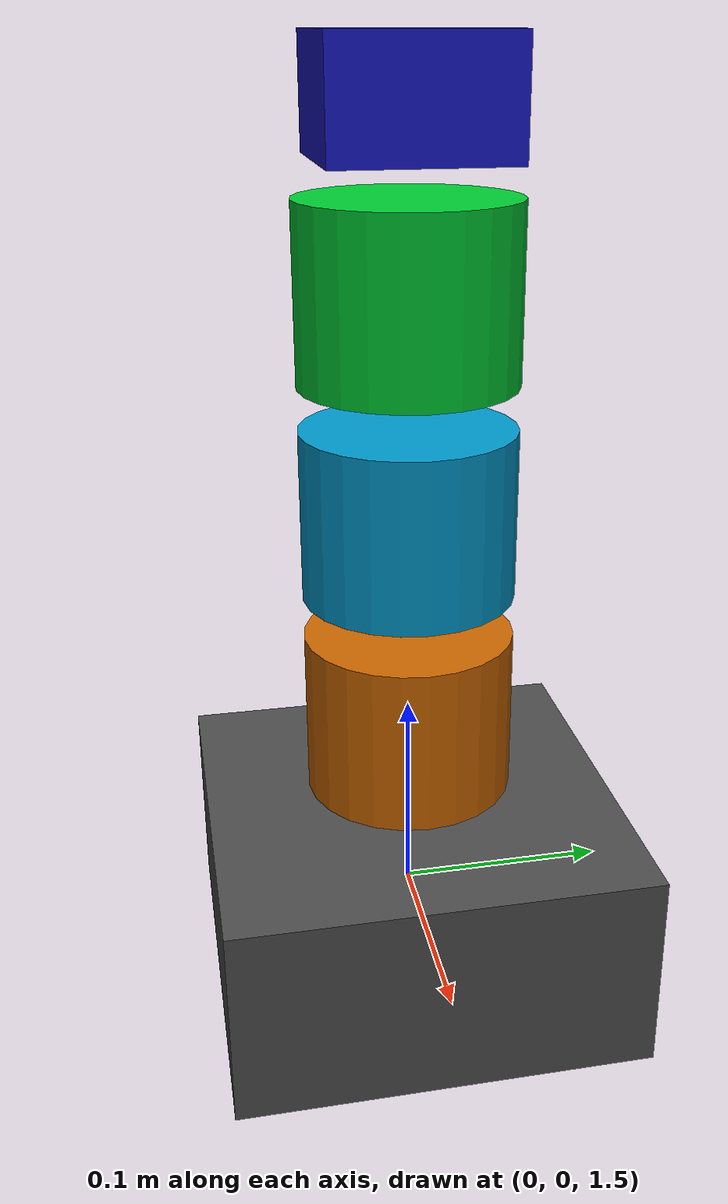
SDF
<?xml version="1.0" encoding="UTF-8"?>
<sdf version="1.6">
    <!-- ===== 3-AXIS GIMBAL + CAMERA ===== -->
    <model name="gimbal">
      <static>false</static>
      <pose>0 0 1.5 0 0 0</pose>

      <!-- Base link — fixed mount point -->
      <link name="base_link">
        <visual name="visual">
          <geometry><box><size>0.2 0.2 0.1</size></box></geometry>
          <material><ambient>0.3 0.3 0.3 1</ambient></material>
        </visual>

        <collision name="collision">
          <geometry><box><size>0.2 0.2 0.1</size></box></geometry>
        </collision>

        <inertial>
          <mass>1.0</mass>
          <inertia><ixx>0.01</ixx><iyy>0.01</iyy><izz>0.01</izz></inertia>
        </inertial>

        <!-- IMU sensor - mounted on gimbal base -->
        <sensor name="imu_sensor" type="imu">
          <always_on>1</always_on>
          <update_rate>100</update_rate>
          <topic>/imu/data</topic>
          <imu>
            <angular_velocity>
              <x><noise type="gaussian"><mean>0</mean><stddev>0.009</stddev></noise></x>
              <y><noise type="gaussian"><mean>0</mean><stddev>0.009</stddev></noise></y>
              <z><noise type="gaussian"><mean>0</mean><stddev>0.009</stddev></noise></z>
            </angular_velocity>
            <linear_acceleration>
              <x><noise type="gaussian"><mean>0</mean><stddev>0.021</stddev></noise></x>
              <y><noise type="gaussian"><mean>0</mean><stddev>0.021</stddev></noise></y>
              <z><noise type="gaussian"><mean>0</mean><stddev>0.021</stddev></noise></z>
            </linear_acceleration>
          </imu>
        </sensor>

      </link>

      <!-- Pan link — rotates around Z axis (left/right) -->
      <link name="pan_link">
        <pose>0 0 0.1 0 0 0</pose>
        <visual name="visual">
          <geometry><cylinder><radius>0.05</radius><length>0.08</length></cylinder></geometry>
          <material><ambient>0.8 0.4 0.0 1</ambient></material>
        </visual>
        <collision name="collision">
          <geometry><cylinder><radius>0.05</radius><length>0.08</length></cylinder></geometry>
        </collision>
        <inertial>
          <mass>0.3</mass>
          <inertia><ixx>0.001</ixx><iyy>0.001</iyy><izz>0.001</izz></inertia>
        </inertial>
      </link>

      <!-- Pan joint — Z axis rotation -->
      <joint name="pan_joint" type="revolute">
        <parent>base_link</parent>
        <child>pan_link</child>
        <pose>0 0 0 0 0 0</pose>
        <axis>
          <xyz>0 0 1</xyz>
          <dynamics><damping>0.5</damping><friction>0.1</friction></dynamics>
        </axis>
      </joint>

      <!-- Tilt link — rotates around Y axis (up/down) -->
      <link name="tilt_link">
        <pose>0 0 0.2 0 0 0</pose>
        <visual name="visual">
          <geometry><cylinder><radius>0.05</radius><length>0.08</length></cylinder></geometry>
          <material><ambient>0.0 0.6 0.8 1</ambient></material>
        </visual>
        <collision name="collision">
          <geometry><cylinder><radius>0.05</radius><length>0.08</length></cylinder></geometry>
        </collision>
        <inertial>
          <mass>0.3</mass>
          <inertia><ixx>0.001</ixx><iyy>0.001</iyy><izz>0.001</izz></inertia>
        </inertial>
      </link>

      <!-- Tilt joint — Y axis rotation -->
      <joint name="tilt_joint" type="revolute">
        <parent>pan_link</parent>
        <child>tilt_link</child>
        <pose>0 0 0 0 0 0</pose>
        <axis>
          <xyz>0 1 0</xyz>
          <dynamics><damping>0.5</damping><friction>0.1</friction></dynamics>
        </axis>
      </joint>

      <!-- Roll link — rotates around X axis -->
      <link name="roll_link">
        <pose>0 0 0.3 0 0 0</pose>
        <visual name="visual">
          <geometry><cylinder><radius>0.05</radius><length>0.08</length></cylinder></geometry>
          <material><ambient>0.0 0.8 0.2 1</ambient></material>
        </visual>
        <collision name="collision">
          <geometry><cylinder><radius>0.05</radius><length>0.08</length></cylinder></geometry>
        </collision>
        <inertial>
          <mass>0.3</mass>
          <inertia><ixx>0.001</ixx><iyy>0.001</iyy><izz>0.001</izz></inertia>
        </inertial>
      </link>

      <!-- Roll joint — X axis rotation -->
      <joint name="roll_joint" type="revolute">
        <parent>tilt_link</parent>
        <child>roll_link</child>
        <pose>0 0 0 0 0 0</pose>
        <axis>
          <xyz>1 0 0</xyz>
          <dynamics><damping>0.5</damping><friction>0.1</friction></dynamics>
        </axis>
      </joint>

      <!-- Camera link — attached to roll link -->
      <link name="camera_link">
        <pose>0 0 0.38 0 0 0</pose>
        <visual name="visual">
          <geometry><box><size>0.08 0.08 0.05</size></box></geometry>
          <material>
            <ambient>0.1 0.1 0.8 1</ambient>
          </material>
        </visual>
        <collision name="collision">
          <geometry><box><size>0.08 0.08 0.05</size></box></geometry>
        </collision>
        <inertial>
          <mass>0.1</mass>
          <inertia><ixx>0.0001</ixx><iyy>0.0001</iyy><izz>0.0001</izz></inertia>
        </inertial>

        <!-- Camera sensor -->
        <sensor name="camera_sensor" type="camera">
          <pose>0 0 0 0 0 0</pose>
          <always_on>1</always_on>
          <update_rate>30</update_rate>
          <camera>
            <horizontal_fov>1.047</horizontal_fov>
            <image>
              <width>640</width>
              <height>480</height>
              <format>R8G8B8</format>
            </image>
            <clip>
                <near>0.1</near>
                <far>100</far>
            </clip>
          </camera>
          <topic>/camera/image_raw</topic>
        </sensor>
      </link>

      <!-- Camera joint — fixed to roll link -->
      <joint name="camera_joint" type="fixed">
        <parent>roll_link</parent>
        <child>camera_link</child>
      </joint>

      <!-- Joint velocity controller plugin -->
      <plugin filename="gz-sim-joint-controller-system"
              name="gz::sim::systems::JointController">
        <joint_name>pan_joint</joint_name>
        <topic>/gimbal/pan/cmd_vel</topic>
        <initial_velocity>0</initial_velocity>
      </plugin>

      <plugin filename="gz-sim-joint-controller-system"
              name="gz::sim::systems::JointController">
        <joint_name>tilt_joint</joint_name>
        <topic>/gimbal/tilt/cmd_vel</topic>
        <initial_velocity>0</initial_velocity>
      </plugin>

      <plugin filename="gz-sim-joint-controller-system"
              name="gz::sim::systems::JointController">
        <joint_name>roll_joint</joint_name>
        <topic>/gimbal/roll/cmd_vel</topic>
        <initial_velocity>0</initial_velocity>
      </plugin>

      <!-- Joint position publisher — so controller can read current angles -->
      <plugin filename="gz-sim-joint-state-publisher-system"
              name="gz::sim::systems::JointStatePublisher"/>

    </model>
</sdf>
